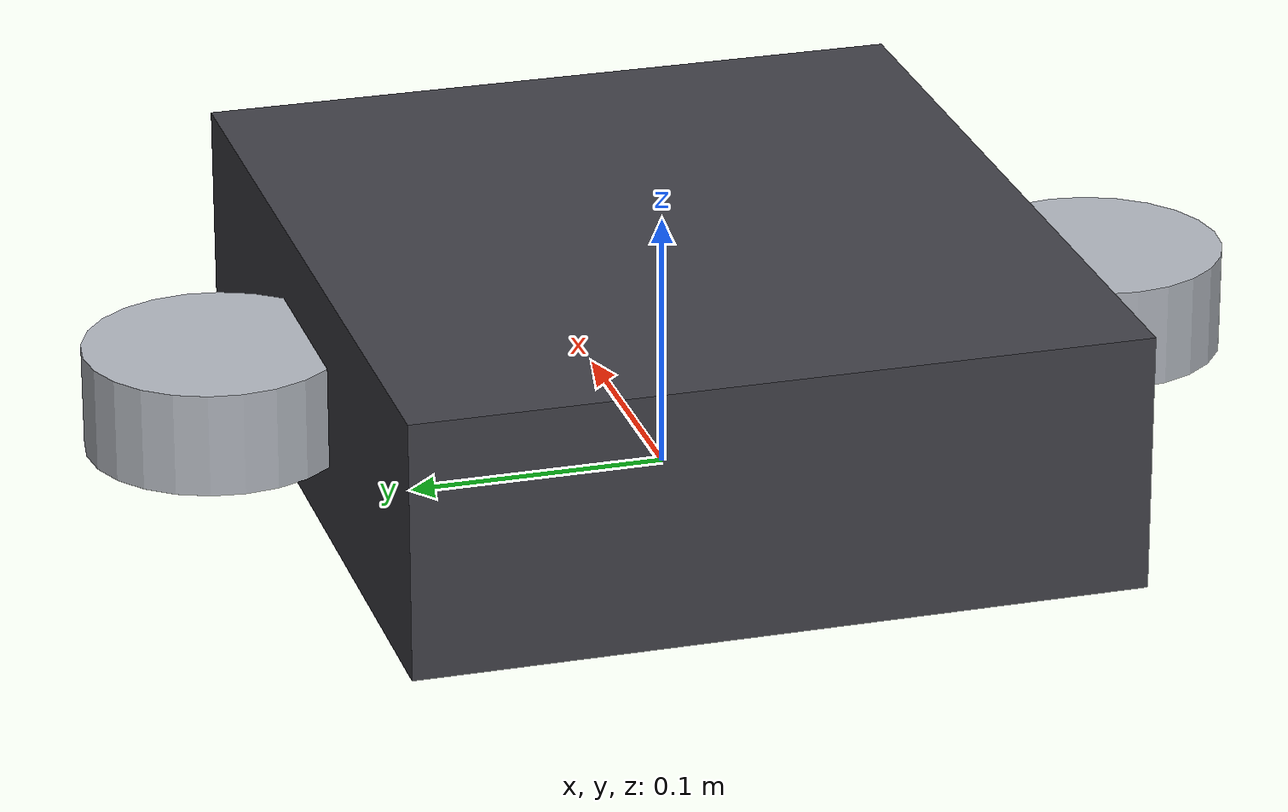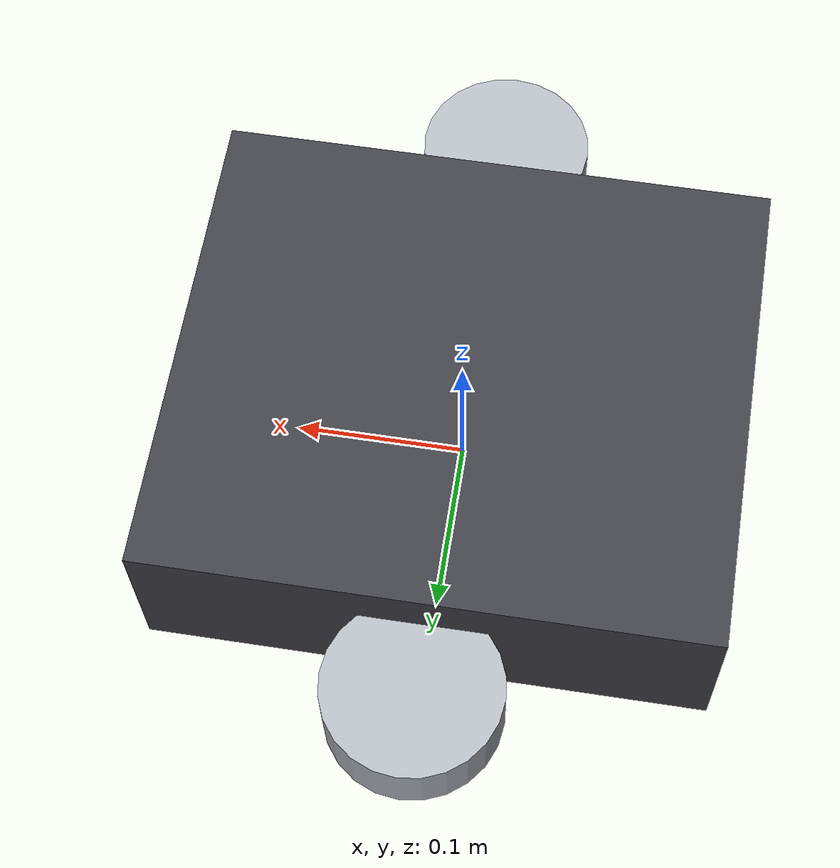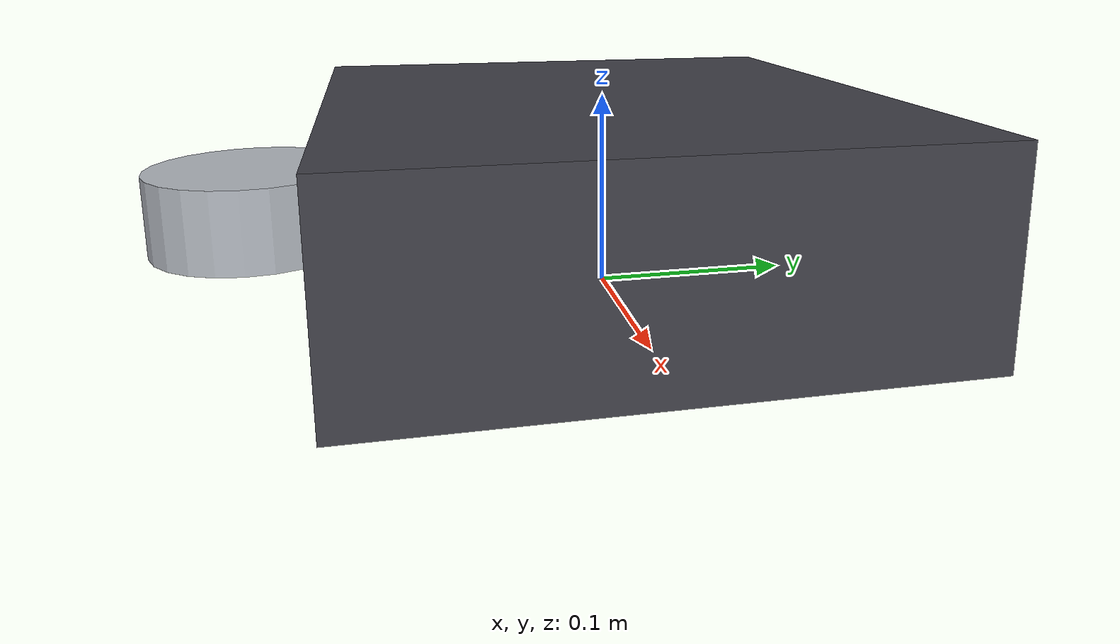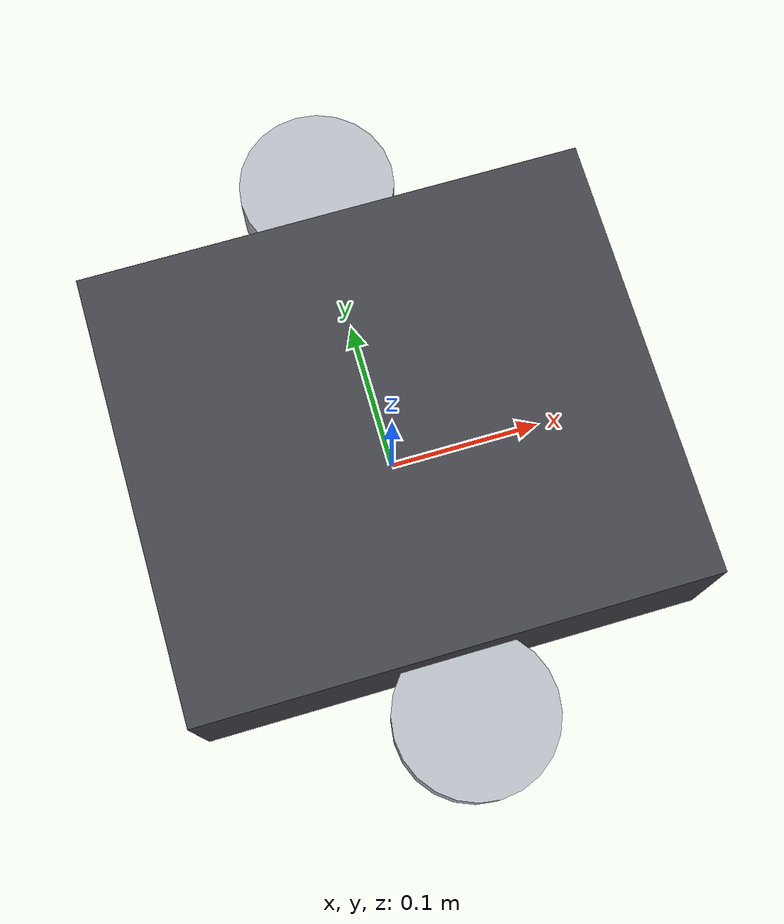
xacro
<?xml version="1.0"?>
<robot name="carter" xmlns:xacro="http://www.ros.org/wiki/xacro">
  <xacro:property name="wheel_radius" value="0.05"/>
  <xacro:property name="wheel_separation" value="0.35"/>

  <material name="dark_gray">
    <color rgba="0.25 0.25 0.28 1.0"/>
  </material>
  <material name="light_gray">
    <color rgba="0.70 0.72 0.75 1.0"/>
  </material>

  <link name="base_footprint"/>
  <joint name="base_footprint_joint" type="fixed">
    <parent link="base_footprint"/>
    <child link="base_link"/>
    <origin xyz="0 0 0.05" rpy="0 0 0"/>
  </joint>

  <link name="base_link">
    <visual>
      <origin xyz="0 0 0.0" rpy="0 0 0"/>
      <geometry>
        <box size="0.32 0.28 0.10"/>
      </geometry>
      <material name="dark_gray"/>
    </visual>
    <collision>
      <origin xyz="0 0 0.0" rpy="0 0 0"/>
      <geometry>
        <box size="0.32 0.28 0.10"/>
      </geometry>
    </collision>
    <inertial>
      <mass value="3.0"/>
      <inertia ixx="0.05" ixy="0.0" ixz="0.0" iyy="0.06" iyz="0.0" izz="0.04"/>
    </inertial>
  </link>

  <link name="left_wheel_link">
    <visual>
      <origin xyz="0 0 0" rpy="0 0 0"/>
      <geometry>
        <cylinder radius="${wheel_radius}" length="0.04"/>
      </geometry>
      <material name="light_gray"/>
    </visual>
    <collision>
      <origin xyz="0 0 0" rpy="0 0 0"/>
      <geometry>
        <cylinder radius="${wheel_radius}" length="0.04"/>
      </geometry>
    </collision>
    <inertial>
      <mass value="0.08"/>
      <inertia ixx="0.0001" ixy="0.0" ixz="0.0" iyy="0.0001" iyz="0.0" izz="0.0001"/>
    </inertial>
  </link>

  <link name="right_wheel_link">
    <visual>
      <origin xyz="0 0 0" rpy="0 0 0"/>
      <geometry>
        <cylinder radius="${wheel_radius}" length="0.04"/>
      </geometry>
      <material name="light_gray"/>
    </visual>
    <collision>
      <origin xyz="0 0 0" rpy="0 0 0"/>
      <geometry>
        <cylinder radius="${wheel_radius}" length="0.04"/>
      </geometry>
    </collision>
    <inertial>
      <mass value="0.08"/>
      <inertia ixx="0.0001" ixy="0.0" ixz="0.0" iyy="0.0001" iyz="0.0" izz="0.0001"/>
    </inertial>
  </link>

  <joint name="left_wheel_joint" type="continuous">
    <parent link="base_link"/>
    <child link="left_wheel_link"/>
    <origin xyz="0.0 ${wheel_separation / 2.0} 0.0" rpy="0 0 0"/>
    <axis xyz="0 1 0"/>
  </joint>

  <joint name="right_wheel_joint" type="continuous">
    <parent link="base_link"/>
    <child link="right_wheel_link"/>
    <origin xyz="0.0 -${wheel_separation / 2.0} 0.0" rpy="0 0 0"/>
    <axis xyz="0 1 0"/>
  </joint>

  <link name="imu_link"/>
  <joint name="imu_joint" type="fixed">
    <parent link="base_link"/>
    <child link="imu_link"/>
    <origin xyz="0.05 0 0.08" rpy="0 0 0"/>
  </joint>

  <link name="laser_link"/>
  <joint name="laser_joint" type="fixed">
    <parent link="base_link"/>
    <child link="laser_link"/>
    <origin xyz="0.12 0 0.12" rpy="0 0 0"/>
  </joint>

  <ros2_control name="CarterSystem" type="system">
    <hardware>
      <plugin>mock_components/GenericSystem</plugin>
      <param name="fake_sensor_commands">false</param>
      <param name="state_feedback">true</param>
    </hardware>
    <joint name="left_wheel_joint">
      <command_interface name="velocity">
        <param name="min">-0.5</param>
        <param name="max">0.5</param>
      </command_interface>
      <state_interface name="position"/>
      <state_interface name="velocity"/>
    </joint>
    <joint name="right_wheel_joint">
      <command_interface name="velocity">
        <param name="min">-0.5</param>
        <param name="max">0.5</param>
      </command_interface>
      <state_interface name="position"/>
      <state_interface name="velocity"/>
    </joint>
  </ros2_control>
</robot>
